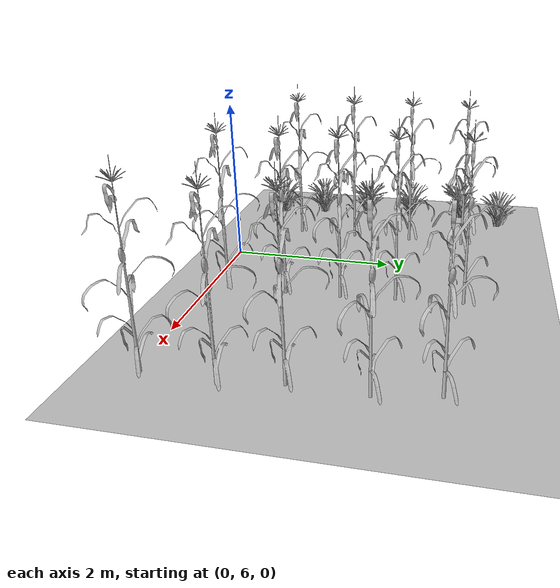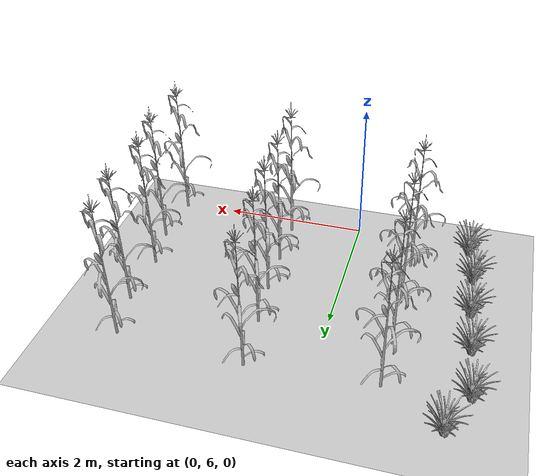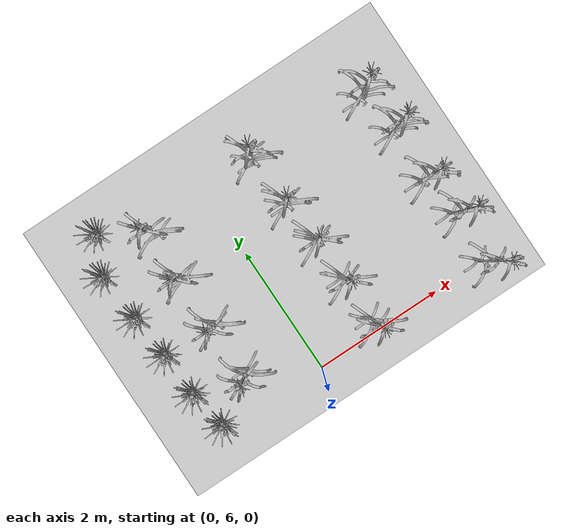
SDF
<sdf version="1.6">
 <world name="default">
  <model name="corn_stalk2_clone_8">
   <static>1</static>
   <link name="corn_stalk2_link">
    <collision name="collision">
     <geometry><mesh><scale>1 1 1</scale><uri>model://corn_type2/meshes/model.stl</uri></mesh></geometry>
    </collision>
    <visual name="corn_stalk2_visual">
     <geometry><mesh><uri>model://corn_type2/meshes/model.stl</uri><scale>1 1 1</scale></mesh></geometry>
     <material>
      <script>
       <uri>model://corn_type2/materials/scripts</uri>
       <uri>model://corn_type2/materials/textures</uri>
       <name>corn_type2/Diffuse</name>
      </script>
     </material>
    </visual>
   </link>
   <pose>2.73655 6.04878 0 0 -0 0</pose>
  </model>
  <model name="corn_stalk2_clone_12">
   <static>1</static>
   <link name="corn_stalk2_link">
    <collision name="collision">
     <geometry><mesh><scale>1 1 1</scale><uri>model://corn_type2/meshes/model.stl</uri></mesh></geometry>
    </collision>
    <visual name="corn_stalk2_visual">
     <geometry><mesh><uri>model://corn_type2/meshes/model.stl</uri><scale>1 1 1</scale></mesh></geometry>
     <material>
      <script>
       <uri>model://corn_type2/materials/scripts</uri>
       <uri>model://corn_type2/materials/textures</uri>
       <name>corn_type2/Diffuse</name>
      </script>
     </material>
    </visual>
   </link>
   <pose>0.988959 6.23083 0 0 -0 0</pose>
  </model>
  <model name="corn_stalk2_clone_13">
   <static>1</static>
   <link name="corn_stalk2_link">
    <collision name="collision">
     <geometry><mesh><scale>1 1 1</scale><uri>model://corn_type2/meshes/model.stl</uri></mesh></geometry>
    </collision>
    <visual name="corn_stalk2_visual">
     <geometry><mesh><uri>model://corn_type2/meshes/model.stl</uri><scale>1 1 1</scale></mesh></geometry>
     <material>
      <script>
       <uri>model://corn_type2/materials/scripts</uri>
       <uri>model://corn_type2/materials/textures</uri>
       <name>corn_type2/Diffuse</name>
      </script>
     </material>
    </visual>
   </link>
   <pose>2.77618 6.83896 0 0 -0 0</pose>
  </model>
  <model name="corn_stalk2_clone_14">
   <static>1</static>
   <link name="corn_stalk2_link">
    <collision name="collision">
     <geometry><mesh><scale>1 1 1</scale><uri>model://corn_type2/meshes/model.stl</uri></mesh></geometry>
    </collision>
    <visual name="corn_stalk2_visual">
     <geometry><mesh><uri>model://corn_type2/meshes/model.stl</uri><scale>1 1 1</scale></mesh></geometry>
     <material>
      <script>
       <uri>model://corn_type2/materials/scripts</uri>
       <uri>model://corn_type2/materials/textures</uri>
       <name>corn_type2/Diffuse</name>
      </script>
     </material>
    </visual>
   </link>
   <pose>2.66591 7.46676 0 0 -0 0</pose>
  </model>
  <model name="corn_stalk2_clone_15">
   <static>1</static>
   <link name="corn_stalk2_link">
    <collision name="collision">
     <geometry><mesh><scale>1 1 1</scale><uri>model://corn_type2/meshes/model.stl</uri></mesh></geometry>
    </collision>
    <visual name="corn_stalk2_visual">
     <geometry><mesh><uri>model://corn_type2/meshes/model.stl</uri><scale>1 1 1</scale></mesh></geometry>
     <material>
      <script>
       <uri>model://corn_type2/materials/scripts</uri>
       <uri>model://corn_type2/materials/textures</uri>
       <name>corn_type2/Diffuse</name>
      </script>
     </material>
    </visual>
   </link>
   <pose>2.68237 8.26243 0 0 -0 0</pose>
  </model>
  <model name="corn_stalk2_clone_16">
   <static>1</static>
   <link name="corn_stalk2_link">
    <collision name="collision">
     <geometry><mesh><scale>1 1 1</scale><uri>model://corn_type2/meshes/model.stl</uri></mesh></geometry>
    </collision>
    <visual name="corn_stalk2_visual">
     <geometry><mesh><uri>model://corn_type2/meshes/model.stl</uri><scale>1 1 1</scale></mesh></geometry>
     <material>
      <script>
       <uri>model://corn_type2/materials/scripts</uri>
       <uri>model://corn_type2/materials/textures</uri>
       <name>corn_type2/Diffuse</name>
      </script>
     </material>
    </visual>
   </link>
   <pose>2.56598 8.90491 0 0 -0 0</pose>
  </model>
  <model name="corn_stalk2_clone_17">
   <static>1</static>
   <link name="corn_stalk2_link">
    <collision name="collision">
     <geometry><mesh><scale>1 1 1</scale><uri>model://corn_type2/meshes/model.stl</uri></mesh></geometry>
    </collision>
    <visual name="corn_stalk2_visual">
     <geometry><mesh><uri>model://corn_type2/meshes/model.stl</uri><scale>1 1 1</scale></mesh></geometry>
     <material>
      <script>
       <uri>model://corn_type2/materials/scripts</uri>
       <uri>model://corn_type2/materials/textures</uri>
       <name>corn_type2/Diffuse</name>
      </script>
     </material>
    </visual>
   </link>
   <pose>0.972809 6.94115 0 0 -0 0</pose>
  </model>
  <model name="corn_stalk2_clone_18">
   <static>1</static>
   <link name="corn_stalk2_link">
    <collision name="collision">
     <geometry><mesh><scale>1 1 1</scale><uri>model://corn_type2/meshes/model.stl</uri></mesh></geometry>
    </collision>
    <visual name="corn_stalk2_visual">
     <geometry><mesh><uri>model://corn_type2/meshes/model.stl</uri><scale>1 1 1</scale></mesh></geometry>
     <material>
      <script>
       <uri>model://corn_type2/materials/scripts</uri>
       <uri>model://corn_type2/materials/textures</uri>
       <name>corn_type2/Diffuse</name>
      </script>
     </material>
    </visual>
   </link>
   <pose>0.949668 7.59112 0 0 -0 0</pose>
  </model>
  <model name="corn_stalk2_clone_19">
   <static>1</static>
   <link name="corn_stalk2_link">
    <collision name="collision">
     <geometry><mesh><scale>1 1 1</scale><uri>model://corn_type2/meshes/model.stl</uri></mesh></geometry>
    </collision>
    <visual name="corn_stalk2_visual">
     <geometry><mesh><uri>model://corn_type2/meshes/model.stl</uri><scale>1 1 1</scale></mesh></geometry>
     <material>
      <script>
       <uri>model://corn_type2/materials/scripts</uri>
       <uri>model://corn_type2/materials/textures</uri>
       <name>corn_type2/Diffuse</name>
      </script>
     </material>
    </visual>
   </link>
   <pose>0.886813 8.23261 0 0 -0 0</pose>
  </model>
  <model name="corn_stalk2_clone_20">
   <static>1</static>
   <link name="corn_stalk2_link">
    <collision name="collision">
     <geometry><mesh><scale>1 1 1</scale><uri>model://corn_type2/meshes/model.stl</uri></mesh></geometry>
    </collision>
    <visual name="corn_stalk2_visual">
     <geometry><mesh><uri>model://corn_type2/meshes/model.stl</uri><scale>1 1 1</scale></mesh></geometry>
     <material>
      <script>
       <uri>model://corn_type2/materials/scripts</uri>
       <uri>model://corn_type2/materials/textures</uri>
       <name>corn_type2/Diffuse</name>
      </script>
     </material>
    </visual>
   </link>
   <pose>0.835695 9.00921 0 0 -0 0</pose>
  </model>
  <model name="corn_stalk2_clone_24">
   <static>1</static>
   <link name="corn_stalk2_link">
    <collision name="collision">
     <geometry><mesh><scale>1 1 1</scale><uri>model://corn_type2/meshes/model.stl</uri></mesh></geometry>
    </collision>
    <visual name="corn_stalk2_visual">
     <geometry><mesh><uri>model://corn_type2/meshes/model.stl</uri><scale>1 1 1</scale></mesh></geometry>
     <material>
      <script>
       <uri>model://corn_type2/materials/scripts</uri>
       <uri>model://corn_type2/materials/textures</uri>
       <name>corn_type2/Diffuse</name>
      </script>
     </material>
    </visual>
   </link>
   <pose>-0.866052 6.61618 0 0 -0 0</pose>
  </model>
  <model name="corn_stalk2_clone_25">
   <static>1</static>
   <link name="corn_stalk2_link">
    <collision name="collision">
     <geometry><mesh><scale>1 1 1</scale><uri>model://corn_type2/meshes/model.stl</uri></mesh></geometry>
    </collision>
    <visual name="corn_stalk2_visual">
     <geometry><mesh><uri>model://corn_type2/meshes/model.stl</uri><scale>1 1 1</scale></mesh></geometry>
     <material>
      <script>
       <uri>model://corn_type2/materials/scripts</uri>
       <uri>model://corn_type2/materials/textures</uri>
       <name>corn_type2/Diffuse</name>
      </script>
     </material>
    </visual>
   </link>
   <pose>-0.846776 7.39823 0 0 -0 0</pose>
  </model>
  <model name="corn_stalk2_clone_26">
   <static>1</static>
   <link name="corn_stalk2_link">
    <collision name="collision">
     <geometry><mesh><scale>1 1 1</scale><uri>model://corn_type2/meshes/model.stl</uri></mesh></geometry>
    </collision>
    <visual name="corn_stalk2_visual">
     <geometry><mesh><uri>model://corn_type2/meshes/model.stl</uri><scale>1 1 1</scale></mesh></geometry>
     <material>
      <script>
       <uri>model://corn_type2/materials/scripts</uri>
       <uri>model://corn_type2/materials/textures</uri>
       <name>corn_type2/Diffuse</name>
      </script>
     </material>
    </visual>
   </link>
   <pose>-0.859214 8.1798 0 0 -0 0</pose>
  </model>
  <model name="corn_stalk2_clone_27">
   <static>1</static>
   <link name="corn_stalk2_link">
    <collision name="collision">
     <geometry><mesh><scale>1 1 1</scale><uri>model://corn_type2/meshes/model.stl</uri></mesh></geometry>
    </collision>
    <visual name="corn_stalk2_visual">
     <geometry><mesh><uri>model://corn_type2/meshes/model.stl</uri><scale>1 1 1</scale></mesh></geometry>
     <material>
      <script>
       <uri>model://corn_type2/materials/scripts</uri>
       <uri>model://corn_type2/materials/textures</uri>
       <name>corn_type2/Diffuse</name>
      </script>
     </material>
    </visual>
   </link>
   <pose>-0.837283 8.90668 0 0 -0 0</pose>
  </model>
  <model name="bush">
   <static>1</static>
   <link name="link">
    <collision name="collision"><geometry><box><size>0.5 0.5 1</size></box></geometry></collision>
    <visual name="visual">
     <geometry><mesh><uri>model://bush_type1/meshes/model.stl</uri><scale>1 1 1</scale></mesh></geometry>
     <material>
      <script>
       <uri>model://bush_type1/materials/scripts</uri>
       <uri>model://bush_type1/materials/textures</uri>
       <name>bush_type1/Diffuse</name>
      </script>
     </material>
    </visual>
   </link>
   <pose>-1.87664 8.82731 0 0 -0 0</pose>
  </model>
  <model name="bush_clone">
   <static>1</static>
   <link name="link">
    <collision name="collision"><geometry><box><size>0.5 0.5 1</size></box></geometry></collision>
    <visual name="visual">
     <geometry><mesh><uri>model://bush_type1/meshes/model.stl</uri><scale>1 1 1</scale></mesh></geometry>
     <material>
      <script>
       <uri>model://bush_type1/materials/scripts</uri>
       <uri>model://bush_type1/materials/textures</uri>
       <name>bush_type1/Diffuse</name>
      </script>
     </material>
    </visual>
   </link>
   <pose>-1.81289 8.07767 0 0 -0 0</pose>
  </model>
  <model name="bush_clone_0">
   <static>1</static>
   <link name="link">
    <collision name="collision"><geometry><box><size>0.5 0.5 1</size></box></geometry></collision>
    <visual name="visual">
     <geometry><mesh><uri>model://bush_type1/meshes/model.stl</uri><scale>1 1 1</scale></mesh></geometry>
     <material>
      <script>
       <uri>model://bush_type1/materials/scripts</uri>
       <uri>model://bush_type1/materials/textures</uri>
       <name>bush_type1/Diffuse</name>
      </script>
     </material>
    </visual>
   </link>
   <pose>-1.7522 7.4075 0 0 -0 0</pose>
  </model>
  <model name="bush_clone_1">
   <static>1</static>
   <link name="link">
    <collision name="collision"><geometry><box><size>0.5 0.5 1</size></box></geometry></collision>
    <visual name="visual">
     <geometry><mesh><uri>model://bush_type1/meshes/model.stl</uri><scale>1 1 1</scale></mesh></geometry>
     <material>
      <script>
       <uri>model://bush_type1/materials/scripts</uri>
       <uri>model://bush_type1/materials/textures</uri>
       <name>bush_type1/Diffuse</name>
      </script>
     </material>
    </visual>
   </link>
   <pose>-1.72686 6.72508 0 0 -0 0</pose>
  </model>
  <model name="bush_clone_2">
   <static>1</static>
   <link name="link">
    <collision name="collision"><geometry><box><size>0.5 0.5 1</size></box></geometry></collision>
    <visual name="visual">
     <geometry><mesh><uri>model://bush_type1/meshes/model.stl</uri><scale>1 1 1</scale></mesh></geometry>
     <material>
      <script>
       <uri>model://bush_type1/materials/scripts</uri>
       <uri>model://bush_type1/materials/textures</uri>
       <name>bush_type1/Diffuse</name>
      </script>
     </material>
    </visual>
   </link>
   <pose>-1.62442 6.11828 0 0 -0 0</pose>
  </model>
  <model name="bush_clone_6">
   <static>1</static>
   <link name="link">
    <collision name="collision"><geometry><box><size>0.5 0.5 1</size></box></geometry></collision>
    <visual name="visual">
     <geometry><mesh><uri>model://bush_type1/meshes/model.stl</uri><scale>1 1 1</scale></mesh></geometry>
     <material>
      <script>
       <uri>model://bush_type1/materials/scripts</uri>
       <uri>model://bush_type1/materials/textures</uri>
       <name>bush_type1/Diffuse</name>
      </script>
     </material>
    </visual>
   </link>
   <pose>-1.61571 9.38748 0 0 -0 0</pose>
  </model>
  <model name="ground_plane">
   <static>1</static>
   <link name="link">
    <collision name="collision">
     <geometry><plane><normal>0 0 1</normal><size>100 100</size></plane></geometry>
     <surface><friction><ode><mu>100</mu><mu2>50</mu2></ode></friction></surface>
    </collision>
    <visual name="visual">
     <cast_shadows>0</cast_shadows>
     <geometry><plane><normal>0 0 1</normal><size>100 100</size></plane></geometry>
     <material>
      <script><uri>file://media/materials/scripts/gazebo.material</uri><name>Gazebo/Grey</name></script>
     </material>
    </visual>
   </link>
   <pose>-0.048535 -0.08759 0 0 -0 0</pose>
  </model>
 </world>
</sdf>
